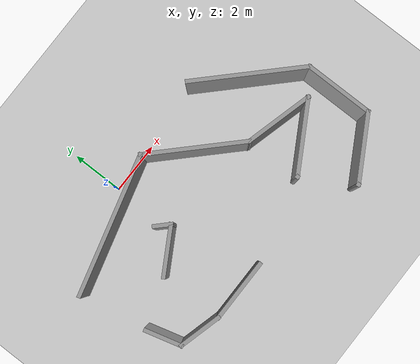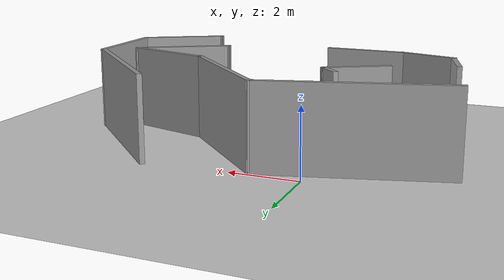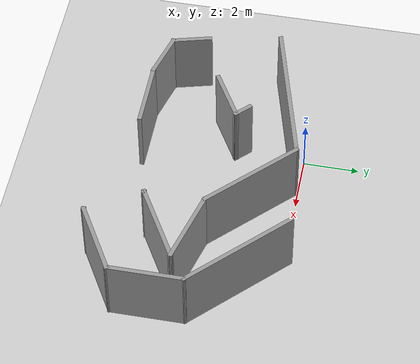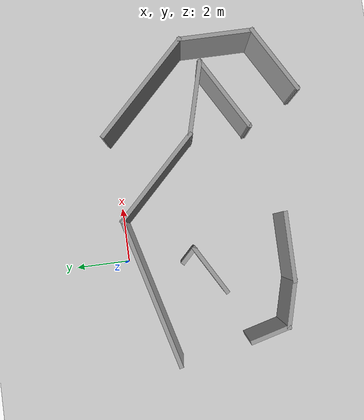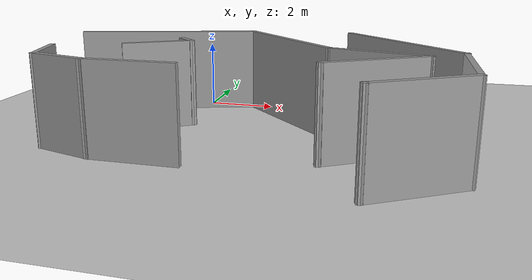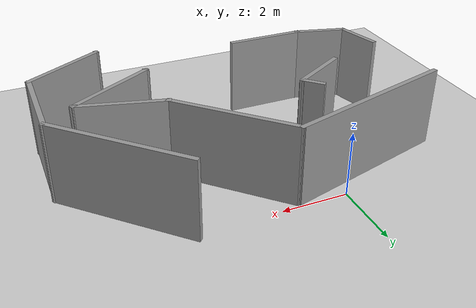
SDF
<sdf version="1.7">
 <world name="default">
  <light name="sun" type="directional">
   <pose>0 0 10 0 -0 0</pose>
   <diffuse>0.8 0.8 0.8 1</diffuse>
   <specular>0.2 0.2 0.2 1</specular>
   <attenuation>
    <range>1000</range>
    <constant>0.9</constant>
    <linear>0.01</linear>
    <quadratic>0.001</quadratic>
   </attenuation>
   <direction>-0.5 0.1 -0.9</direction>
   <spot><inner_angle>0</inner_angle><outer_angle>0</outer_angle><falloff>0</falloff></spot>
  </light>
  <model name="ground_plane">
   <static>1</static>
   <link name="link">
    <collision name="collision">
     <geometry><plane><normal>0 0 1</normal><size>100 100</size></plane></geometry>
     <surface>
      <contact><collide_bitmask>65535</collide_bitmask></contact>
      <friction><ode><mu>100</mu><mu2>50</mu2></ode></friction>
     </surface>
    </collision>
    <visual name="visual">
     <cast_shadows>0</cast_shadows>
     <geometry><plane><normal>0 0 1</normal><size>100 100</size></plane></geometry>
     <material>
      <script><uri>file://media/materials/scripts/gazebo.material</uri><name>Gazebo/Grey</name></script>
     </material>
    </visual>
   </link>
  </model>
  <gravity>0 0 -9.8</gravity>
  <magnetic_field>6e-06 2.3e-05 -4.2e-05</magnetic_field>
  <atmosphere type="adiabatic"/>
  <physics type="ode">
   <max_step_size>0.001</max_step_size>
   <real_time_factor>1</real_time_factor>
   <real_time_update_rate>1000</real_time_update_rate>
  </physics>
  <scene><ambient>0.4 0.4 0.4 1</ambient><background>0.7 0.7 0.7 1</background><shadows>1</shadows></scene>
  <spherical_coordinates>
   <surface_model>EARTH_WGS84</surface_model>
   <latitude_deg>0</latitude_deg>
   <longitude_deg>0</longitude_deg>
   <elevation>0</elevation>
   <heading_deg>0</heading_deg>
  </spherical_coordinates>
  <model name="phong1">
   <pose>1.94006 -3.30615 0 0 -0 0</pose>
   <link name="Wall_0">
    <collision name="Wall_0_Collision">
     <geometry><box><size>1.5 0.15 2.5</size></box></geometry>
     <pose>0 0 1.25 0 -0 0</pose>
    </collision>
    <visual name="Wall_0_Visual">
     <pose>0 0 1.25 0 -0 0</pose>
     <geometry><box><size>1.5 0.15 2.5</size></box></geometry>
     <material>
      <script><uri>file://media/materials/scripts/gazebo.material</uri><name>Gazebo/Grey</name></script>
      <ambient>1 1 1 1</ambient>
     </material>
     <meta><layer>0</layer></meta>
    </visual>
    <pose>-4.99536 -1.40585 0 0 -0 -1.309</pose>
   </link>
   <link name="Wall_1">
    <collision name="Wall_1_Collision">
     <geometry><box><size>1.75 0.15 2.5</size></box></geometry>
     <pose>0 0 1.25 0 -0 0</pose>
    </collision>
    <visual name="Wall_1_Visual">
     <pose>0 0 1.25 0 -0 0</pose>
     <geometry><box><size>1.75 0.15 2.5</size></box></geometry>
     <material>
      <script><uri>file://media/materials/scripts/gazebo.material</uri><name>Gazebo/Grey</name></script>
      <ambient>1 1 1 1</ambient>
     </material>
     <meta><layer>0</layer></meta>
    </visual>
    <pose>-4.04792 -2.26491 0 0 -0 -0.261799</pose>
   </link>
   <link name="Wall_10">
    <collision name="Wall_10_Collision">
     <geometry><box><size>3 0.15 2.5</size></box></geometry>
     <pose>0 0 1.25 0 -0 0</pose>
    </collision>
    <visual name="Wall_10_Visual">
     <pose>0 0 1.25 0 -0 0</pose>
     <geometry><box><size>3 0.15 2.5</size></box></geometry>
     <material>
      <script><uri>file://media/materials/scripts/gazebo.material</uri><name>Gazebo/Grey</name></script>
      <ambient>1 1 1 1</ambient>
     </material>
     <meta><layer>0</layer></meta>
    </visual>
    <pose>3.51732 -0.926958 0 0 -0 -2.61799</pose>
   </link>
   <link name="Wall_11">
    <collision name="Wall_11_Collision">
     <geometry><box><size>0.16 0.15 2.5</size></box></geometry>
     <pose>0 0 1.25 0 -0 0</pose>
    </collision>
    <visual name="Wall_11_Visual">
     <pose>0 0 1.25 0 -0 0</pose>
     <geometry><box><size>0.16 0.15 2.5</size></box></geometry>
     <material>
      <script><uri>file://media/materials/scripts/gazebo.material</uri><name>Gazebo/Grey</name></script>
      <ambient>1 1 1 1</ambient>
     </material>
     <meta><layer>0</layer></meta>
    </visual>
    <pose>2.28824 -1.63946 0 0 -0 0</pose>
   </link>
   <link name="Wall_13">
    <collision name="Wall_13_Collision">
     <geometry><box><size>4.5 0.15 2.5</size></box></geometry>
     <pose>0 0 1.25 0 -0 0</pose>
    </collision>
    <visual name="Wall_13_Visual">
     <pose>0 0 1.25 0 -0 0</pose>
     <geometry><box><size>4.5 0.15 2.5</size></box></geometry>
     <material>
      <script><uri>file://media/materials/scripts/gazebo.material</uri><name>Gazebo/Grey</name></script>
      <ambient>1 1 1 1</ambient>
     </material>
     <meta><layer>0</layer></meta>
    </visual>
    <pose>4.0979 1.94819 0 0 -0 -0.785398</pose>
   </link>
   <link name="Wall_14">
    <collision name="Wall_14_Collision">
     <geometry><box><size>2.75 0.15 2.5</size></box></geometry>
     <pose>0 0 1.25 0 -0 0</pose>
    </collision>
    <visual name="Wall_14_Visual">
     <pose>0 0 1.25 0 -0 0</pose>
     <geometry><box><size>2.75 0.15 2.5</size></box></geometry>
     <material>
      <script><uri>file://media/materials/scripts/gazebo.material</uri><name>Gazebo/Grey</name></script>
      <ambient>1 1 1 1</ambient>
     </material>
     <meta><layer>0</layer></meta>
    </visual>
    <pose>5.63585 -0.889764 0 0 -0 -1.5708</pose>
   </link>
   <link name="Wall_15">
    <collision name="Wall_15_Collision">
     <geometry><box><size>2.75 0.15 2.5</size></box></geometry>
     <pose>0 0 1.25 0 -0 0</pose>
    </collision>
    <visual name="Wall_15_Visual">
     <pose>0 0 1.25 0 -0 0</pose>
     <geometry><box><size>2.75 0.15 2.5</size></box></geometry>
     <material>
      <script><uri>file://media/materials/scripts/gazebo.material</uri><name>Gazebo/Grey</name></script>
      <ambient>1 1 1 1</ambient>
     </material>
     <meta><layer>0</layer></meta>
    </visual>
    <pose>4.51002 -2.83976 0 0 -0 -2.61799</pose>
   </link>
   <link name="Wall_16">
    <collision name="Wall_16_Collision">
     <geometry><box><size>0.15 0.15 2.5</size></box></geometry>
     <pose>0 0 1.25 0 -0 0</pose>
    </collision>
    <visual name="Wall_16_Visual">
     <pose>0 0 1.25 0 -0 0</pose>
     <geometry><box><size>0.15 0.15 2.5</size></box></geometry>
     <material>
      <script><uri>file://media/materials/scripts/gazebo.material</uri><name>Gazebo/Grey</name></script>
      <ambient>1 1 1 1</ambient>
     </material>
     <meta><layer>0</layer></meta>
    </visual>
    <pose>3.38419 -3.48976 0 0 -0 0</pose>
   </link>
   <link name="Wall_2">
    <collision name="Wall_2_Collision">
     <geometry><box><size>2.5 0.15 2.5</size></box></geometry>
     <pose>0 0 1.25 0 -0 0</pose>
    </collision>
    <visual name="Wall_2_Visual">
     <pose>0 0 1.25 0 -0 0</pose>
     <geometry><box><size>2.5 0.15 2.5</size></box></geometry>
     <material>
      <script><uri>file://media/materials/scripts/gazebo.material</uri><name>Gazebo/Grey</name></script>
      <ambient>1 1 1 1</ambient>
     </material>
     <meta><layer>0</layer></meta>
    </visual>
    <pose>-2.10018 -2.47196 0 0 -0 0</pose>
   </link>
   <link name="Wall_4">
    <collision name="Wall_4_Collision">
     <geometry><box><size>2 0.15 2.5</size></box></geometry>
     <pose>0 0 1.25 0 -0 0</pose>
    </collision>
    <visual name="Wall_4_Visual">
     <pose>0 0 1.25 0 -0 0</pose>
     <geometry><box><size>2 0.15 2.5</size></box></geometry>
     <material>
      <script><uri>file://media/materials/scripts/gazebo.material</uri><name>Gazebo/Grey</name></script>
      <ambient>1 1 1 1</ambient>
     </material>
     <meta><layer>0</layer></meta>
    </visual>
    <pose>-2.53899 0.35865 0 0 -0 0.523599</pose>
   </link>
   <link name="Wall_5">
    <collision name="Wall_5_Collision">
     <geometry><box><size>0.75 0.15 2.5</size></box></geometry>
     <pose>0 0 1.25 0 -0 0</pose>
    </collision>
    <visual name="Wall_5_Visual">
     <pose>0 0 1.25 0 -0 0</pose>
     <geometry><box><size>0.75 0.15 2.5</size></box></geometry>
     <material>
      <script><uri>file://media/materials/scripts/gazebo.material</uri><name>Gazebo/Grey</name></script>
      <ambient>1 1 1 1</ambient>
     </material>
     <meta><layer>0</layer></meta>
    </visual>
    <pose>-1.95005 1.03328 0 0 -0 2.35619</pose>
   </link>
   <link name="Wall_7">
    <collision name="Wall_7_Collision">
     <geometry><box><size>5.5 0.15 2.5</size></box></geometry>
     <pose>0 0 1.25 0 -0 0</pose>
    </collision>
    <visual name="Wall_7_Visual">
     <pose>0 0 1.25 0 -0 0</pose>
     <geometry><box><size>5.5 0.15 2.5</size></box></geometry>
     <material>
      <script><uri>file://media/materials/scripts/gazebo.material</uri><name>Gazebo/Grey</name></script>
      <ambient>1 1 1 1</ambient>
     </material>
     <meta><layer>0</layer></meta>
    </visual>
    <pose>-3.06621 2.48849 0 0 -0 0.261799</pose>
   </link>
   <link name="Wall_8">
    <collision name="Wall_8_Collision">
     <geometry><box><size>4 0.15 2.5</size></box></geometry>
     <pose>0 0 1.25 0 -0 0</pose>
    </collision>
    <visual name="Wall_8_Visual">
     <pose>0 0 1.25 0 -0 0</pose>
     <geometry><box><size>4 0.15 2.5</size></box></geometry>
     <material>
      <script><uri>file://media/materials/scripts/gazebo.material</uri><name>Gazebo/Grey</name></script>
      <ambient>1 1 1 1</ambient>
     </material>
     <meta><layer>0</layer></meta>
    </visual>
    <pose>0.878821 1.81965 0 0 -0 -0.785398</pose>
   </link>
   <link name="Wall_9">
    <collision name="Wall_9_Collision">
     <geometry><box><size>2.75 0.15 2.5</size></box></geometry>
     <pose>0 0 1.25 0 -0 0</pose>
    </collision>
    <visual name="Wall_9_Visual">
     <pose>0 0 1.25 0 -0 0</pose>
     <geometry><box><size>2.75 0.15 2.5</size></box></geometry>
     <material>
      <script><uri>file://media/materials/scripts/gazebo.material</uri><name>Gazebo/Grey</name></script>
      <ambient>1 1 1 1</ambient>
     </material>
     <meta><layer>0</layer></meta>
    </visual>
    <pose>3.49571 0.122006 0 0 -0 -0.261799</pose>
   </link>
   <static>1</static>
  </model>
 </world>
</sdf>
